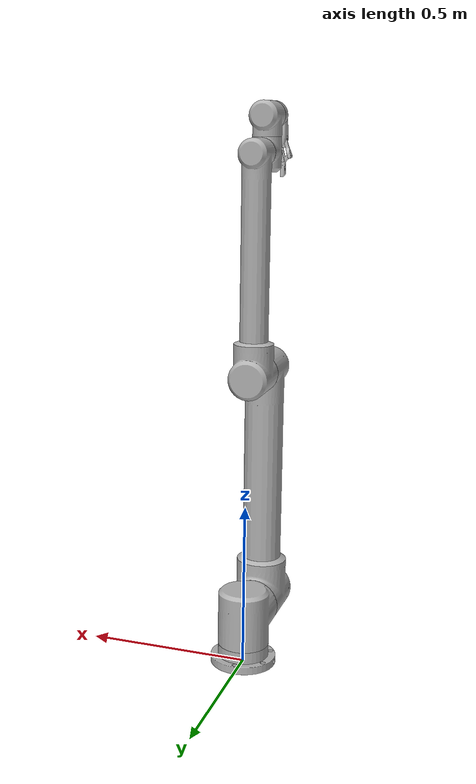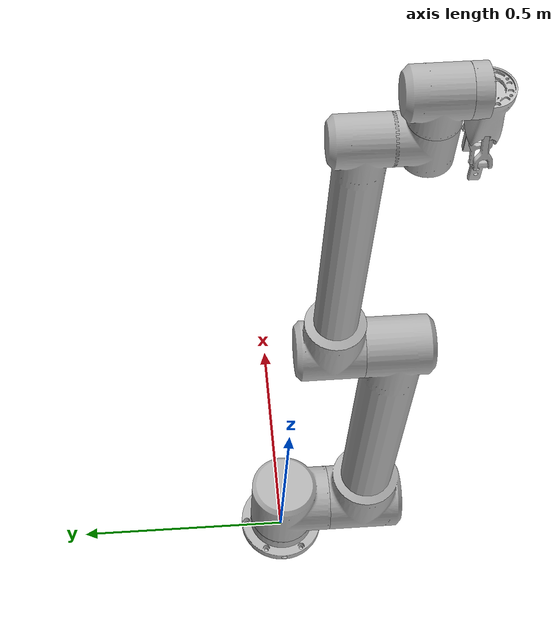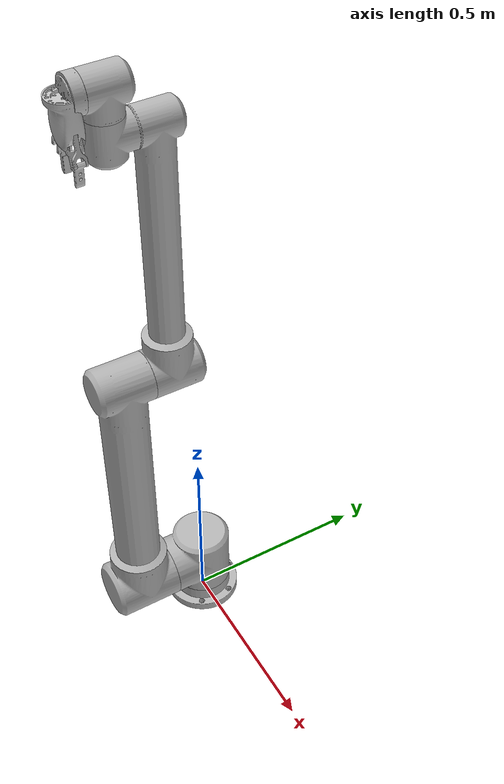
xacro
<?xml version='1.0' encoding='utf-8'?>
<robot xmlns:xacro="http://ros.org/wiki/xacro" name="utra6_1500">

  <xacro:arg name="prefix" default=""/>
  <xacro:arg name="ros_namespace" default="utra6_1500"/>
  <xacro:arg name="limited" default="false"/>
  <xacro:arg name="effort_control" default="false"/>
  <xacro:arg name="attach_to_world" default="true"/>
  <xacro:arg name="add_gripper" default="true"/>
  <xacro:arg name="add_realsense_d435i" default="false"/>

    <!-- utra6_1500 -->
    <xacro:include filename="$(find arm_description)/urdf/utra6_1500.urdf.xacro" />

    <xacro:if value="$(arg attach_to_world)">
      <link name="world" />
    </xacro:if>

    <joint name="$(arg prefix)world_joint" type="fixed">
      <parent link="world" />
      <child link = "$(arg prefix)base_link" />
      <origin xyz="0 0 0" rpy="0 0 0" />
    </joint>

    <link name="$(arg prefix)link_tcp" />

    <joint
      name="$(arg prefix)joint_tcp"
      type="fixed">
      <origin
        xyz="0 -0.18 0"
        rpy="0 0 0" />
      <parent
        link="$(arg prefix)link_6" />
      <child
        link="$(arg prefix)link_tcp" />
    </joint>

    <xacro:if value="$(arg limited)">
      <xacro:utra6_1500_urdf prefix="$(arg prefix)"
        joint1_lower_limit="${-2.0*pi+0.02}" joint1_upper_limit="${2.0*pi-0.02}"
        joint2_lower_limit="${-2.0*pi+0.02}" joint2_upper_limit="${2.0*pi-0.02}"
        joint3_lower_limit="${-2.9578+0.02}" joint3_upper_limit="${2.9578-0.02}"
        joint4_lower_limit="${-2.0*pi+0.02}" joint4_upper_limit="${2.0*pi-0.02}"
        joint5_lower_limit="${-2.0*pi+0.02}" joint5_upper_limit="${2.0*pi-0.02}"
        joint6_lower_limit="${-2.0*pi+0.02}" joint6_upper_limit="${2.0*pi-0.02}"/>
    </xacro:if>
    <xacro:unless value="$(arg limited)">
      <xacro:utra6_1500_urdf prefix="$(arg prefix)"/>
    </xacro:unless>

  <xacro:include filename="$(find arm_description)/urdf/transmission.xacro" />

  <xacro:transmission_block joint_name="$(arg prefix)joint1"/>
  <xacro:transmission_block joint_name="$(arg prefix)joint2"/>
  <xacro:transmission_block joint_name="$(arg prefix)joint3"/>
  <xacro:transmission_block joint_name="$(arg prefix)joint4"/>
  <xacro:transmission_block joint_name="$(arg prefix)joint5"/>
  <xacro:transmission_block joint_name="$(arg prefix)joint6"/>

  <xacro:include filename="$(find arm_description)/urdf/utra6_1500_common.gazebo.xacro" />

  <xacro:if value="$(arg add_realsense_d435i)" >
    <link name="$(arg prefix)d435i">
        <inertial>
          <origin xyz="0 0 0" rpy="0 0 0" />
          <mass value="0.00001" />
          <inertia ixx="0" ixy="0" ixz="0" iyy="0" iyz="0" izz="0" />
        </inertial>
        <visual>
          <origin xyz="0 0 0" rpy="0 0 0" />
          <geometry> <mesh filename="package://arm_description/meshes/d435i/d435i.STL" /> </geometry>
          <material name="Silver"> <color rgba="0.7 0.7 0.7 1.0"/> </material>
        </visual>
        <collision>
          <origin xyz="0 0 0" rpy="0 0 0" />
          <geometry> <mesh filename="package://arm_description/meshes/d435i/d435i.STL" /> </geometry>
        </collision>
    </link>
    <joint name="$(arg prefix)d435i_joint" type="fixed">
        <parent link="$(arg prefix)link_6"/>
        <child link="$(arg prefix)d435i"/>
        <origin xyz="0 0 0" rpy="0 -${pi/2} ${pi/2}"/>
    </joint>
    <xacro:if value="$(arg add_gripper)" >
      <xacro:include filename="$(find utra_gripper)/urdf/gripper.urdf.xacro" />
      <xacro:gripper prefix="$(arg prefix)" parent="$(arg prefix)d435i" >
        <origin xyz="0 0 0" rpy="0 0 0"/>
      </xacro:gripper>
    </xacro:if>
  </xacro:if>
  <xacro:unless value="$(arg add_realsense_d435i)">
      <xacro:if value="$(arg add_gripper)" >
          <xacro:include filename="$(find utra_gripper)/urdf/gripper.urdf.xacro" />
          <xacro:gripper prefix="$(arg prefix)" parent="$(arg prefix)link_6" >
            <origin xyz="0 0 0" rpy="1.571 1.571 0"/>
          </xacro:gripper>
      </xacro:if>
  </xacro:unless>

</robot>

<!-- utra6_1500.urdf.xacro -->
<robot xmlns:xacro="http://ros.org/wiki/xacro">

  <xacro:macro name="utra6_1500_urdf" params="prefix
    joint1_lower_limit:=${-2.0*pi+0.02} joint1_upper_limit:=${2.0*pi-0.02}
    joint2_lower_limit:=${-2.0*pi+0.02} joint2_upper_limit:=${2.0*pi-0.02}
    joint3_lower_limit:=${-2.9578+0.02} joint3_upper_limit:=${2.9578-0.02}
    joint4_lower_limit:=${-2.0*pi+0.02} joint4_upper_limit:=${2.0*pi-0.02}
    joint5_lower_limit:=${-2.0*pi+0.02} joint5_upper_limit:=${2.0*pi-0.02}
    joint6_lower_limit:=${-2.0*pi+0.02} joint6_upper_limit:=${2.0*pi-0.02}">

    <material name="Black">  <color rgba="0.0 0.0 0.0 1.0"/> </material>
    <material name="Red">    <color rgba="0.8 0.0 0.0 1.0"/> </material>
    <material name="White">  <color rgba="1.0 1.0 1.0 1.0"/> </material>
    <material name="Silver"> <color rgba="0.7 0.7 0.7 1.0"/> </material>

    <xacro:macro name="origin_joint1"> <origin xyz="0 0 0" rpy="0 0 0" /> </xacro:macro>
    <xacro:macro name="origin_joint2"> <origin xyz="0 0 0.1455" rpy="0 0 0" /> </xacro:macro>
    <xacro:macro name="origin_joint3"> <origin xyz="0 0 0.7455" rpy="0 0 0" /> </xacro:macro>
    <xacro:macro name="origin_joint4"> <origin xyz="0 0 0.650" rpy="0 0 0" /> </xacro:macro>
    <xacro:macro name="origin_joint5"> <origin xyz="0 -0.1695 0.1045" rpy="0 0 0" /> </xacro:macro>
    <xacro:macro name="origin_joint6"> <origin xyz="0 -0.0745 0" rpy="${0.5*pi} 0 0" /> </xacro:macro>

    <xacro:macro name="origin_visual_base">   <origin xyz="0 0 0" rpy="0 0 0" /> </xacro:macro>
    <xacro:macro name="origin_visual_link_1"> <origin xyz="0 0 0" rpy="0 0 0" /> </xacro:macro>
    <xacro:macro name="origin_visual_link_2"> <origin xyz="0 0 0" rpy="0 0 0" /> </xacro:macro>
    <xacro:macro name="origin_visual_link_3"> <origin xyz="0 0 0" rpy="0 0 0" /> </xacro:macro>
    <xacro:macro name="origin_visual_link_4"> <origin xyz="0 0 0" rpy="0 0 0" /> </xacro:macro>
    <xacro:macro name="origin_visual_link_5"> <origin xyz="0 0 0" rpy="0 0 0" /> </xacro:macro>
    <xacro:macro name="origin_visual_link_6"> <origin xyz="0 0 0" rpy="0 0 0" /> </xacro:macro>

    <xacro:macro name="origin_inertial_base">   <origin xyz="0 0 0" rpy="0 0 0" /> </xacro:macro>
    <xacro:macro name="origin_inertial_link_1"> <origin xyz="0 0 0" rpy="0 0 0" /> </xacro:macro>
    <xacro:macro name="origin_inertial_link_2"> <origin xyz="0 0 0" rpy="0 0 0" /> </xacro:macro>
    <xacro:macro name="origin_inertial_link_3"> <origin xyz="0 0 0" rpy="0 0 0" /> </xacro:macro>
    <xacro:macro name="origin_inertial_link_4"> <origin xyz="0 0 0" rpy="0 0 0" /> </xacro:macro>
    <xacro:macro name="origin_inertial_link_5"> <origin xyz="0 0 0" rpy="0 0 0" /> </xacro:macro>
    <xacro:macro name="origin_inertial_link_6"> <origin xyz="0 0 0" rpy="0 0 0" /> </xacro:macro>

    <xacro:macro name="inertia_base">   <inertia ixx="0" ixy="0" ixz="0" iyy="0" iyz="0" izz="0" /> </xacro:macro>
    <xacro:macro name="inertia_link_1"> <inertia ixx="0" ixy="0" ixz="0" iyy="0" iyz="0" izz="0" /> </xacro:macro>
    <xacro:macro name="inertia_link_2"> <inertia ixx="0" ixy="0" ixz="0" iyy="0" iyz="0" izz="0" /> </xacro:macro>
    <xacro:macro name="inertia_link_3"> <inertia ixx="0" ixy="0" ixz="0" iyy="0" iyz="0" izz="0" /> </xacro:macro>
    <xacro:macro name="inertia_link_4"> <inertia ixx="0" ixy="0" ixz="0" iyy="0" iyz="0" izz="0" /> </xacro:macro>
    <xacro:macro name="inertia_link_5"> <inertia ixx="0" ixy="0" ixz="0" iyy="0" iyz="0" izz="0" /> </xacro:macro>
    <xacro:macro name="inertia_link_6"> <inertia ixx="0" ixy="0" ixz="0" iyy="0" iyz="0" izz="0" /> </xacro:macro>

    <xacro:property name="mass_base"   value="2.0411199" />
    <xacro:property name="mass_link_1" value="7.9857319" />
    <xacro:property name="mass_link_2" value="14.769921" />
    <xacro:property name="mass_link_3" value="4.6213013" />
    <xacro:property name="mass_link_4" value="1.5706544" />
    <xacro:property name="mass_link_5" value="1.5706544" />
    <xacro:property name="mass_link_6" value="0.2216098" />

    <xacro:property name="effort_joint1" value="450"/>
    <xacro:property name="effort_joint2" value="450"/>
    <xacro:property name="effort_joint3" value="217"/>
    <xacro:property name="effort_joint4" value="70" />
    <xacro:property name="effort_joint5" value="70" />
    <xacro:property name="effort_joint6" value="70" />

    <xacro:property name="speed_joint1" value="1.5" />
    <xacro:property name="speed_joint2" value="1.5" />
    <xacro:property name="speed_joint3" value="2.0" />
    <xacro:property name="speed_joint4" value="3.0" />
    <xacro:property name="speed_joint5" value="3.0" />
    <xacro:property name="speed_joint6" value="3.0" />

    <xacro:property name="damping_joint1" value="3" />
    <xacro:property name="damping_joint2" value="3" />
    <xacro:property name="damping_joint3" value="3" />
    <xacro:property name="damping_joint4" value="3" />
    <xacro:property name="damping_joint5" value="3" />
    <xacro:property name="damping_joint6" value="3" />

    <xacro:property name="friction_joint1" value="2" />
    <xacro:property name="friction_joint2" value="2" />
    <xacro:property name="friction_joint3" value="2" />
    <xacro:property name="friction_joint4" value="2" />
    <xacro:property name="friction_joint5" value="2" />
    <xacro:property name="friction_joint6" value="2" />

    <link name="${prefix}base_link">
      <inertial>
        <xacro:origin_inertial_base/>
        <mass value="${mass_base}" />
        <xacro:inertia_base/>
      </inertial>
      <visual>
        <xacro:origin_visual_base/>
        <geometry> <mesh filename="package://arm_description/meshes/utra6_1500/visual/base.STL" /> </geometry>
        <material name="Silver" />
      </visual>
      <collision>
        <xacro:origin_visual_base/>
        <geometry> <mesh filename="package://arm_description/meshes/utra6_1500/visual/base.STL" /> </geometry>
      </collision>
    </link>

    <joint name="${prefix}joint1" type="revolute">
      <xacro:origin_joint1/>
      <parent link="${prefix}base_link" />
      <child link="${prefix}link_1" />
      <axis xyz="0 0 1" />
      <limit lower="${joint1_lower_limit}" upper="${joint1_upper_limit}" effort="${effort_joint1}" velocity="${speed_joint1}" />
      <dynamics damping="${damping_joint1}" friction="${friction_joint1}" />
    </joint>

    <link name="${prefix}link_1">
      <inertial>
        <xacro:origin_inertial_link_1/>
        <mass value="${mass_link_1}" />
        <xacro:inertia_link_1/>
      </inertial>
      <visual>
        <xacro:origin_visual_link_1/>
        <geometry> <mesh filename="package://arm_description/meshes/utra6_1500/visual/link1.STL" /> </geometry>
        <material name="Silver" />
      </visual>
      <collision>
        <xacro:origin_visual_link_1/>
        <geometry> <mesh filename="package://arm_description/meshes/utra6_1500/visual/link1.STL" /> </geometry>
      </collision>
    </link>

    <joint name="${prefix}joint2" type="revolute">
      <xacro:origin_joint2/>
      <parent link="${prefix}link_1" />
      <child link="${prefix}link_2" />
      <axis xyz="0 -1 0" />
      <limit lower="${joint2_lower_limit}" upper="${joint2_upper_limit}" effort="${effort_joint2}" velocity="${speed_joint2}" />
      <dynamics damping="${damping_joint2}" friction="${friction_joint2}" />
    </joint>

    <link name="${prefix}link_2">
      <inertial>
        <xacro:origin_inertial_link_2/>
        <mass value="${mass_link_2}" />
        <xacro:inertia_link_2/>
      </inertial>
      <visual>
        <xacro:origin_visual_link_2/>
        <geometry> <mesh filename="package://arm_description/meshes/utra6_1500/visual/link2.STL" /> </geometry>
        <material name="Silver" />
      </visual>
      <collision>
        <xacro:origin_visual_link_2/>
        <geometry> <mesh filename="package://arm_description/meshes/utra6_1500/visual/link2.STL" /> </geometry>
      </collision>
    </link>

    <joint name="${prefix}joint3" type="revolute">
      <xacro:origin_joint3/>
      <parent link="${prefix}link_2" />
      <child link="${prefix}link_3" />
      <axis xyz="0 1 0" />
      <limit lower="${joint3_lower_limit}" upper="${joint3_upper_limit}" effort="${effort_joint3}" velocity="${speed_joint3}" />
      <dynamics damping="${damping_joint3}" friction="${friction_joint3}" />
    </joint>

    <link name="${prefix}link_3">
      <inertial>
        <xacro:origin_inertial_link_3/>
        <mass value="${mass_link_3}" />
        <xacro:inertia_link_3/>
      </inertial>
      <visual>
        <xacro:origin_visual_link_3/>
        <geometry> <mesh filename="package://arm_description/meshes/utra6_1500/visual/link3.STL" /> </geometry>
        <material name="Silver" />
      </visual>
      <collision>
        <xacro:origin_visual_link_3/>
        <geometry> <mesh filename="package://arm_description/meshes/utra6_1500/visual/link3.STL" /> </geometry>
      </collision>
    </link>

    <joint name="${prefix}joint4" type="revolute">
      <xacro:origin_joint4/>
      <parent link="${prefix}link_3" />
      <child link="${prefix}link_4" />
      <axis xyz="0 -1 0" />
      <limit lower="${joint4_lower_limit}" upper="${joint4_upper_limit}" effort="${effort_joint4}" velocity="${speed_joint4}" />
      <dynamics damping="${damping_joint4}" friction="${friction_joint4}" />
    </joint>

    <link name="${prefix}link_4">
      <inertial>
        <xacro:origin_inertial_link_4/>
        <mass value="${mass_link_4}" />
        <xacro:inertia_link_4/>
      </inertial>
      <visual>
        <xacro:origin_visual_link_4/>
        <geometry> <mesh filename="package://arm_description/meshes/utra6_1500/visual/link4.STL" /> </geometry>
        <material name="Silver" />
      </visual>
      <collision>
        <xacro:origin_visual_link_4/>
        <geometry> <mesh filename="package://arm_description/meshes/utra6_1500/visual/link4.STL" /> </geometry>
      </collision>
    </link>

    <joint name="${prefix}joint5" type="revolute">
      <xacro:origin_joint5/>
      <parent link="${prefix}link_4" />
      <child link="${prefix}link_5" />
      <axis xyz="0 0 1" />
      <limit lower="${joint5_lower_limit}" upper="${joint5_upper_limit}" effort="${effort_joint5}" velocity="${speed_joint5}" />
      <dynamics damping="${damping_joint5}" friction="${friction_joint5}" />
    </joint>

    <link name="${prefix}link_5">
      <inertial>
        <mass value="${mass_link_5}" />
        <xacro:origin_inertial_link_5/>
        <xacro:inertia_link_5/>
      </inertial>
      <visual>
        <xacro:origin_visual_link_5/>
        <geometry> <mesh filename="package://arm_description/meshes/utra6_1500/visual/link5.STL" /> </geometry>
        <material name="Silver" />
      </visual>
      <collision>
        <xacro:origin_visual_link_5/>
        <geometry> <mesh filename="package://arm_description/meshes/utra6_1500/visual/link5.STL" /> </geometry>
      </collision>
    </link>

    <joint name="${prefix}joint6" type="revolute">
      <xacro:origin_joint6/>
      <parent link="${prefix}link_5" />
      <child link="${prefix}link_6" />
      <axis xyz="0 0 1" />
      <limit lower="${joint6_lower_limit}" upper="${joint6_upper_limit}" effort="${effort_joint6}" velocity="${speed_joint6}" />
      <dynamics damping="${damping_joint6}" friction="${friction_joint6}" />
    </joint>

    <link name="${prefix}link_6">
      <inertial>
        <mass value="${mass_link_6}" />
        <xacro:origin_inertial_link_6/>
        <xacro:inertia_link_6/>
      </inertial>
      <visual>
        <xacro:origin_visual_link_6/>
        <geometry> <mesh filename="package://arm_description/meshes/utra6_1500/visual/link6.STL" /> </geometry>
        <material name="Silver" />
      </visual>
      <collision>
        <xacro:origin_visual_link_6/>
        <geometry> <mesh filename="package://arm_description/meshes/utra6_1500/visual/link6.STL" /> </geometry>
      </collision>
    </link>

  </xacro:macro>
</robot>

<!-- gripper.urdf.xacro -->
<robot xmlns:xacro="http://ros.org/wiki/xacro">
<xacro:include filename="$(find utra_gripper)/urdf/gripper.transmission.xacro" />
    <xacro:macro name="gripper" params="prefix parent *origin">
        <joint name="${prefix}gripper_base_joint" type="fixed">
            <parent link="${parent}"/>
            <child link="${prefix}base_link_gripper"/>
            <xacro:insert_block name="origin"/>
        </joint>
        <xacro:property name="mass_base"  value="0.00001" />
        <link
            name="base_link_gripper">
            <inertial>
            <origin
                xyz="-0.016093 0.0024206 0.03061"
                rpy="0 0 0" />
            <mass
                value="${mass_base}" />
            <inertia
                ixx="3.1219E-06"
                ixy="-2.5375E-07"
                ixz="8.5389E-07"
                iyy="6.5006E-06"
                iyz="-1.1996E-07"
                izz="7.1641E-06" />
            </inertial>
            <visual>
            <origin
                xyz="0 0 0"
                rpy="0 0 0" />
            <geometry>
                <mesh
                filename="package://utra_gripper/meshes/base.stl" />
            </geometry>
            <material
                name="">
                <color
                rgba="0.75294 0.75294 0.75294 1" />
            </material>
            </visual>
            <collision>
            <origin
                xyz="0 0 0"
                rpy="0 0 0" />
            <geometry>
                <mesh
                filename="package://utra_gripper/meshes/base.stl" />
            </geometry>
            </collision>
        </link>

        <gazebo reference="${prefix}base_link_gripper">
            <implicitSpringDamper>1</implicitSpringDamper>
            <mu1>100000</mu1>
            <mu2>100000</mu2>
            <kp>100000000.0</kp>
            <kd>1.0</kd>
        </gazebo>

        <link
            name="left_knuckle_link">
            <inertial>
            <origin
                xyz="0.0004174 0.0081181 0.00092142"
                rpy="0 0 0" />
            <mass
                value="${mass_base}" />
            <inertia
                ixx="1.2495E-07"
                ixy="2.3126E-09"
                ixz="-5.8721E-10"
                iyy="9.2991E-09"
                iyz="2.9378E-08"
                izz="1.1574E-07" />
            </inertial>
            <visual>
            <origin
                xyz="0 0 0"
                rpy="0 0 0" />
            <geometry>
                <mesh
                filename="package://utra_gripper/meshes/knuckle.stl" />
            </geometry>
            <material
                name="">
                <color
                rgba="0.75294 0.75294 0.75294 1" />
            </material>
            </visual>
            <collision>
            <origin
                xyz="0 0 0"
                rpy="0 0 0" />
            <geometry>
                <mesh
                filename="package://utra_gripper/meshes/knuckle.stl" />
            </geometry>
            </collision>
        </link>

        <gazebo reference="${prefix}left_knuckle_link">
            <implicitSpringDamper>1</implicitSpringDamper>
            <mu1>100000</mu1>
            <mu2>100000</mu2>
            <kp>100000000.0</kp>
            <kd>1.0</kd>
        </gazebo>

        <joint
            name="left_knuckle_joint"
            type="revolute">
            <origin
            xyz="0 -0.033 0.063"
            rpy="1.5708 0 1.50" />
            <parent
            link="base_link_gripper" />
            <child
            link="left_knuckle_link" />
            <axis
            xyz="0 0 1" />
            <limit
            lower="-1.57"
            upper="1.57"
            effort="1000"
            velocity="2.0" />
        </joint>
        <link
            name="right_knuckle_link">
            <inertial>
            <origin
                xyz="0.00045059 0.0080041 0.0020288"
                rpy="0 0 0" />
            <mass
                value="${mass_base}" />
            <inertia
                ixx="1.411E-07"
                ixy="1.9567E-09"
                ixz="5.9037E-10"
                iyy="9.5283E-09"
                iyz="-3.0312E-08"
                izz="1.3178E-07" />
            </inertial>
            <visual>
            <origin
                xyz="0 0 0"
                rpy="0 0 0" />
            <geometry>
                <mesh
                filename="package://utra_gripper/meshes/knuckle.stl" />
            </geometry>
            <material
                name="">
                <color
                rgba="0.75294 0.75294 0.75294 1" />
            </material>
            </visual>
            <collision>
            <origin
                xyz="0 0 0"
                rpy="0 0 0" />
            <geometry>
                <mesh
                filename="package://utra_gripper/meshes/knuckle.stl" />
            </geometry>
            </collision>
        </link>

        <gazebo reference="${prefix}right_knuckle_link">
            <implicitSpringDamper>1</implicitSpringDamper>
            <mu1>100000</mu1>
            <mu2>100000</mu2>
            <kp>100000000.0</kp>
            <kd>1.0</kd>
        </gazebo>

        <joint
            name="right_knuckle_joint"
            type="revolute">
            <origin
            xyz="0 0.033 0.063"
            rpy="1.5708 0 -1.50" />
            <parent
            link="base_link_gripper" />
            <child
            link="right_knuckle_link" />
            <axis
            xyz="0 0 -1" />
            <limit
            lower="-1.57"
            upper="1.57"
            effort="1000"
            velocity="2.0" />
            <mimic joint="${prefix}left_knuckle_joint" multiplier="-1"/>
        </joint>
        <link
            name="left_inner_knuckle_link">
            <inertial>
            <origin
                xyz="-0.013801 1.3512E-10 -0.0091952"
                rpy="0 0 0" />
            <mass
                value="${mass_base}" />
            <inertia
                ixx="2.6043E-08"
                ixy="1.1504E-16"
                ixz="-2.1172E-09"
                iyy="1.3937E-07"
                iyz="1.3652E-15"
                izz="1.1332E-07" />
            </inertial>
            <visual>
            <origin
                xyz="0 0 0"
                rpy="0 0 0" />
            <geometry>
                <mesh
                filename="package://utra_gripper/meshes/inner_knuckle.stl" />
            </geometry>
            <material
                name="">
                <color
                rgba="0.75294 0.75294 0.75294 1" />
            </material>
            </visual>
            <collision>
            <origin
                xyz="0 0 0"
                rpy="0 0 0" />
            <geometry>
                <mesh
                filename="package://utra_gripper/meshes/inner_knuckle.stl" />
            </geometry>
            </collision>
        </link>

        <gazebo reference="${prefix}left_inner_knuckle_link">
            <implicitSpringDamper>1</implicitSpringDamper>
            <mu1>100000</mu1>
            <mu2>100000</mu2>
            <kp>100000000.0</kp>
            <kd>1.0</kd>
        </gazebo>

        <joint
            name="left_inner_knuckle_joint"
            type="revolute">
            <origin
            xyz="0 -0.013 0.075"
            rpy="1.5708 1.2 1.5708" />
            <parent
            link="base_link_gripper" />
            <child
            link="left_inner_knuckle_link" />
            <axis
            xyz="0 0 1" />
            <limit
            lower="-1.57"
            upper="1.57"
            effort="1000"
            velocity="2.0" />
            <mimic joint="${prefix}left_knuckle_joint" multiplier="1"/>
        </joint>
        <link
            name="left_finger_link">
            <inertial>
            <origin
                xyz="-0.0038459 0.0027734 -5.6082E-05"
                rpy="0 0 0" />
            <mass
                value="${mass_base}" />
            <inertia
                ixx="1.0044E-07"
                ixy="2.7289E-08"
                ixz="-1.1114E-09"
                iyy="1.5056E-08"
                iyz="3.8024E-09"
                izz="1.0134E-07" />
            </inertial>
            <visual>
            <origin
                xyz="0 0 0"
                rpy="0 0 0" />
            <geometry>
                <mesh
                filename="package://utra_gripper/meshes/finger.stl" />
            </geometry>
            <material
                name="">
                <color
                rgba="0.75294 0.75294 0.75294 1" />
            </material>
            </visual>
            <collision>
            <origin
                xyz="0 0 0"
                rpy="0 0 0" />
            <geometry>
                <mesh
                filename="package://utra_gripper/meshes/finger.stl" />
            </geometry>
            </collision>
        </link>

        <gazebo reference="${prefix}left_finger_link">
            <implicitSpringDamper>1</implicitSpringDamper>
            <mu1>100000</mu1>
            <mu2>100000</mu2>
            <kp>100000000.0</kp>
            <kd>1.0</kd>
        </gazebo>

        <joint
            name="left_finger_joint"
            type="revolute">
            <origin
            xyz="-0.058 0.005 0"
            rpy="9.0533E-10 -1.7902E-09 1.2" />
            <parent
            link="left_inner_knuckle_link" />
            <child
            link="left_finger_link" />
            <axis
            xyz="0 0 1" />
            <limit
            lower="-1.57"
            upper="1.57"
            effort="1000"
            velocity="2.0" />
            <mimic joint="${prefix}left_knuckle_joint" multiplier="-1"/>
        </joint>
        <link
            name="right_inner_knuckle_link">
            <inertial>
            <origin
                xyz="-0.013801 4.8285E-11 0.0069248"
                rpy="0 0 0" />
            <mass
                value="${mass_base}" />
            <inertia
                ixx="2.6043E-08"
                ixy="-1.1384E-15"
                ixz="-2.1172E-09"
                iyy="1.3937E-07"
                iyz="5.1669E-16"
                izz="1.1332E-07" />
            </inertial>
            <visual>
            <origin
                xyz="0 0 0"
                rpy="0 0 0" />
            <geometry>
                <mesh
                filename="package://utra_gripper/meshes/inner_knuckle.stl" />
            </geometry>
            <material
                name="">
                <color
                rgba="0.75294 0.75294 0.75294 1" />
            </material>
            </visual>
            <collision>
            <origin
                xyz="0 0 0"
                rpy="0 0 0" />
            <geometry>
                <mesh
                filename="package://utra_gripper/meshes/inner_knuckle.stl" />
            </geometry>
            </collision>
        </link>

        <gazebo reference="${prefix}right_inner_knuckle_link">
            <implicitSpringDamper>1</implicitSpringDamper>
            <mu1>100000</mu1>
            <mu2>100000</mu2>
            <kp>100000000.0</kp>
            <kd>1.0</kd>
        </gazebo>

        <joint
            name="right_inner_knuckle_joint"
            type="revolute">
            <origin
            xyz="0 0.016 0.075"
            rpy="-1.5708 1.3 -1.5708" />
            <parent
            link="base_link_gripper" />
            <child
            link="right_inner_knuckle_link" />
            <axis
            xyz="0 0 1" />
            <limit
            lower="-1.57"
            upper="1.57"
            effort="1000"
            velocity="2.0" />
            <mimic joint="${prefix}left_knuckle_joint" multiplier="-1"/>
        </joint>
        <link
            name="right_finger_link">
            <inertial>
            <origin
                xyz="-0.0038459 0.0027734 0.0030561"
                rpy="0 0 0" />
            <mass
                value="${mass_base}" />
            <inertia
                ixx="1.0044E-07"
                ixy="2.7289E-08"
                ixz="1.1114E-09"
                iyy="1.5056E-08"
                iyz="-3.8024E-09"
                izz="1.0134E-07" />
            </inertial>
            <visual>
            <origin
                xyz="0 0 0"
                rpy="0 0 0" />
            <geometry>
                <mesh
                filename="package://utra_gripper/meshes/finger.stl" />
            </geometry>
            <material
                name="">
                <color
                rgba="0.75294 0.75294 0.75294 1" />
            </material>
            </visual>
            <collision>
            <origin
                xyz="0 0 0"
                rpy="0 0 0" />
            <geometry>
                <mesh
                filename="package://utra_gripper/meshes/finger.stl" />
            </geometry>
            </collision>
        </link>

        <gazebo reference="${prefix}right_finger_link">
            <implicitSpringDamper>1</implicitSpringDamper>
            <mu1>100000</mu1>
            <mu2>100000</mu2>
            <kp>100000000.0</kp>
            <kd>1.0</kd>
        </gazebo>

        <joint
            name="right_finger_joint"
            type="revolute">
            <origin
            xyz="-0.058 0 0"
            rpy="-3.1416 1.7902E-09 -1.275" />
            <parent
            link="right_inner_knuckle_link" />
            <child
            link="right_finger_link" />
            <axis
            xyz="0 0 -1" />
            <limit
            lower="-1.57"
            upper="1.57"
            effort="1000"
            velocity="2.0" />
            <mimic joint="${prefix}left_knuckle_joint" multiplier="1"/>
        </joint>

        <xacro:gripper_transmission prefix="${prefix}"/>

    </xacro:macro>
</robot>
